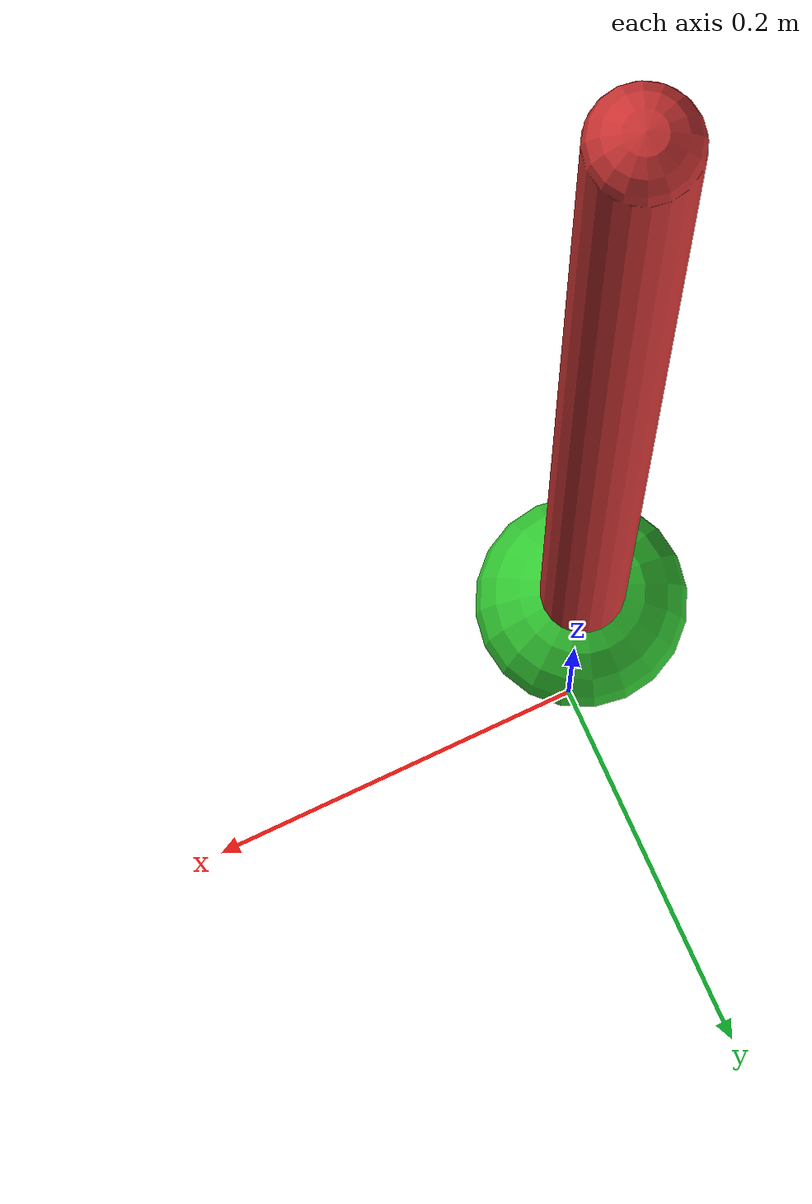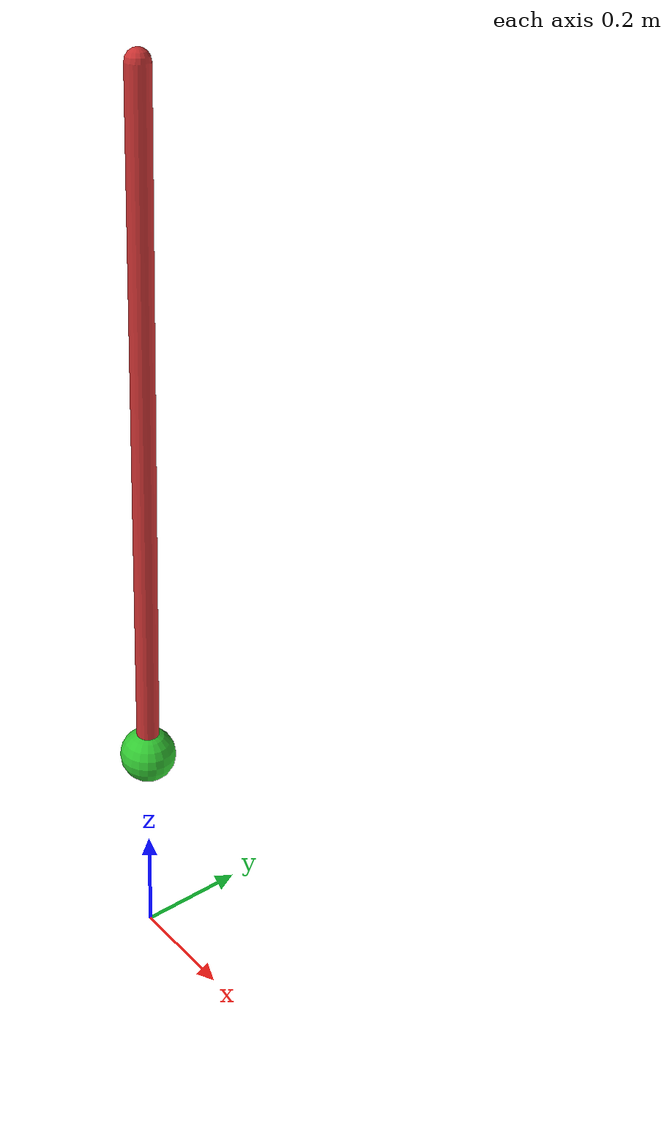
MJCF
<mujoco>
    <worldbody>
        <body name="pole" pos="0 0 1">
            <joint name="hinge" type="hinge" axis="1 0 0"/>
            <geom name="pole" type="capsule" size="0.02 0.6" rgba="0.8 0.2 0.2 1"/>
            <body name="mass" pos="0 0 -0.6">
                <geom name="mass" type="sphere" size="0.05" rgba="0.2 0.8 0.2 1"/>
            </body>
        </body>
    </worldbody>
</mujoco>
